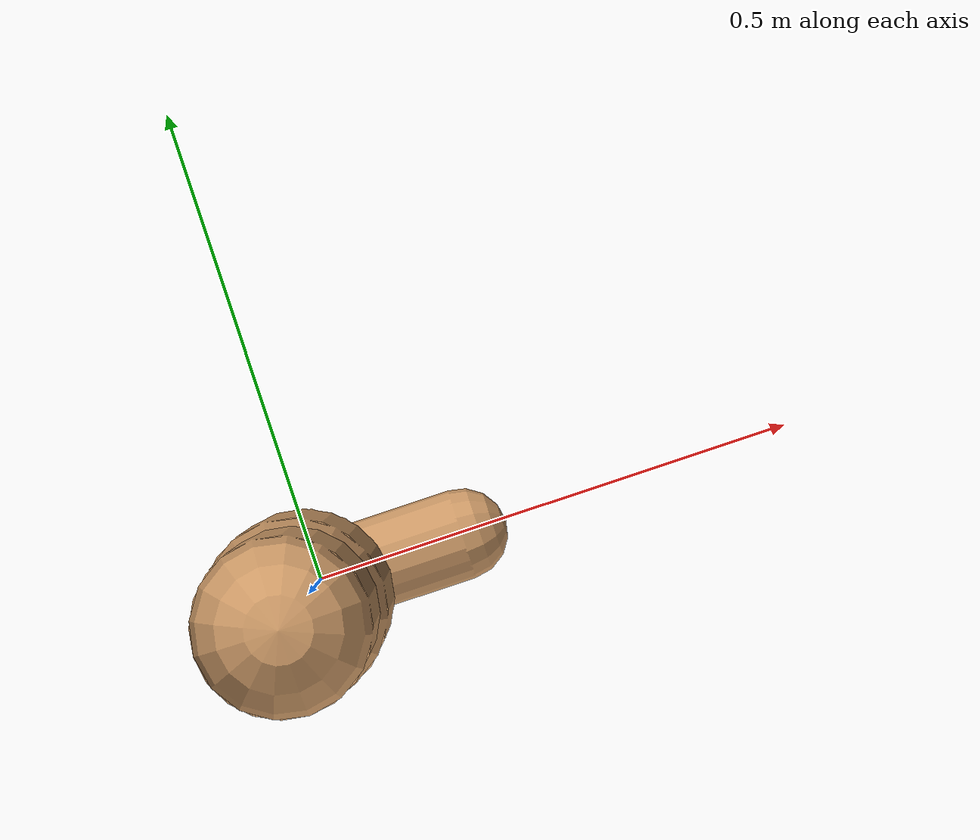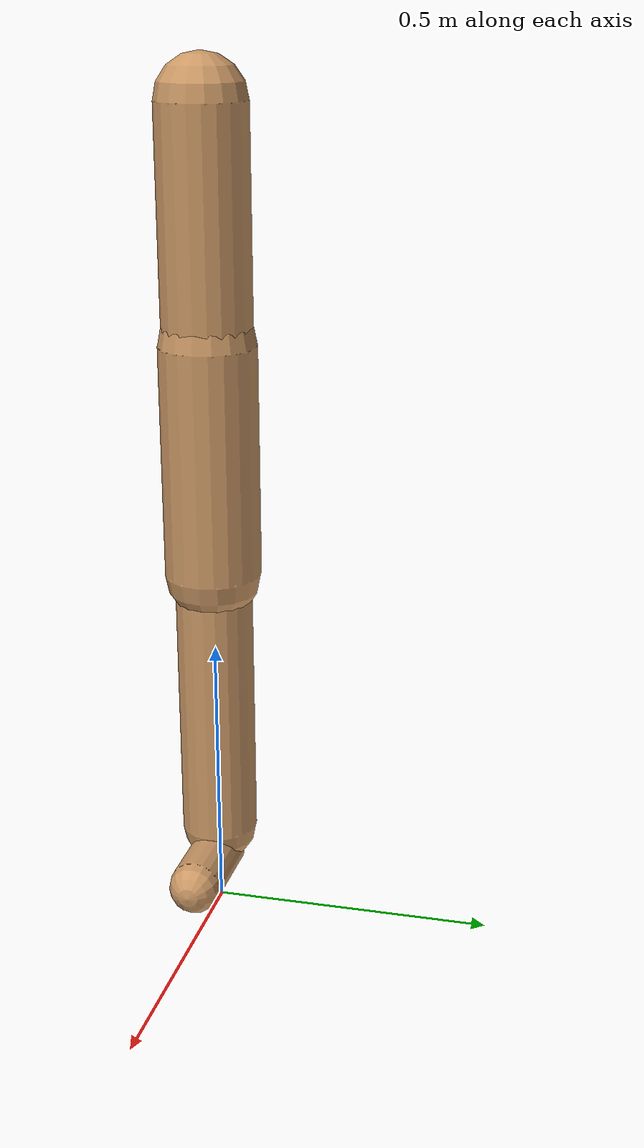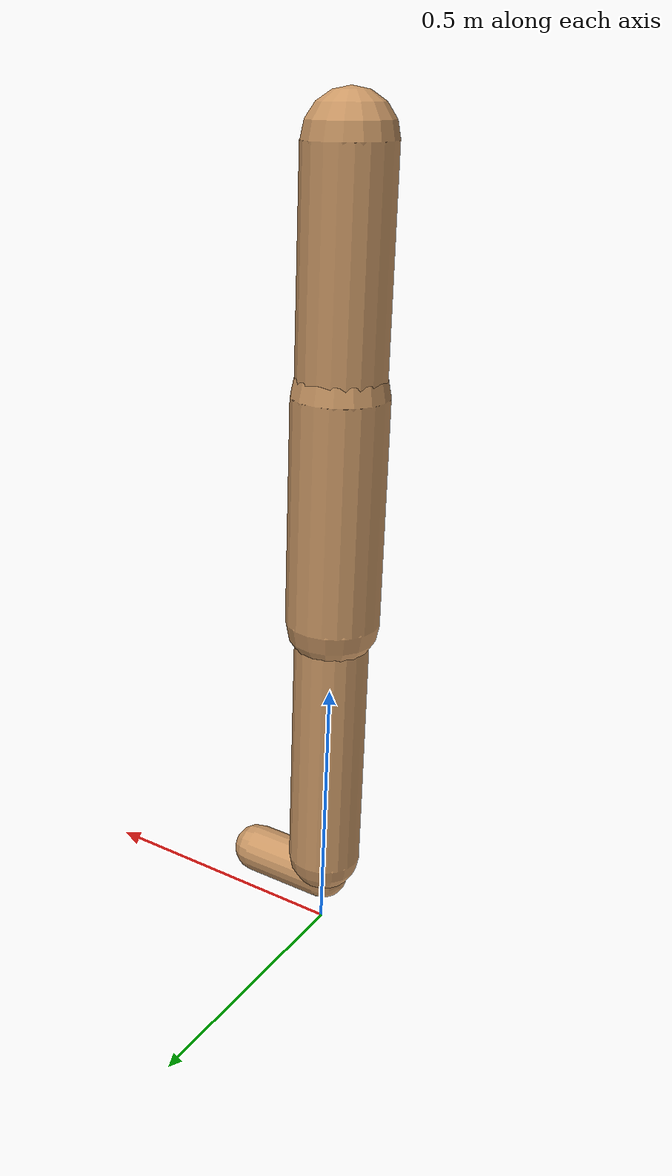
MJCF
<mujoco model="walker2d">
  <compiler angle="degree" coordinate="global" inertiafromgeom="true" />
  <default>
    <joint armature="0.01" damping=".1" limited="true" />
    <geom conaffinity="0" condim="3" contype="1" density="1000" friction="0.8 .1 .1" rgba="0.8 0.6 .4 1" />
  </default>
  <option integrator="RK4" timestep="0.002" />
  <worldbody>

    <body name="torso" pos="0 0 -0.08950450657355803">
      <joint armature="0" axis="1 0 0" damping="0" limited="false" name="ignorex" pos="0 0 0" stiffness="0" type="slide" />
      <joint armature="0" axis="0 0 1" damping="0" limited="false" name="ignorez" pos="0 0 0" ref="1.25" stiffness="0" type="slide" />
      <joint armature="0" axis="0 1 0" damping="0" limited="false" name="ignorey" pos="0 0 0" stiffness="0" type="hinge" />
      <geom fromto="0 0 1.45 0 0 1.05" name="torso_geom" size="0.07791068325247205" type="capsule" />
      <body name="thigh">
        <joint axis="0 -1 0" name="thigh_joint" pos="0 0 1.05" range="-150 0" type="hinge" />
        <geom fromto="0.0 0.0 1.05 0.0 0.0 0.6423968715348433" name="thigh_geom" size="0.0845314942886945" type="capsule" />
        <body name="leg" pos="0.0 0.0 0.04239687153484328">
          <joint axis="0 -1 0" name="leg_joint" pos="0 0 0.6" range="-150 0" type="hinge" />
          <geom fromto="0.0 0.0 0.6 0.0 0.0 0.14710763503871477" name="leg_geom" size="0.0676251954309556" type="capsule" />
          <body name="foot" pos="0.0 0.0 0.04710763503871476">
            <joint axis="0 -1 0" name="foot_joint" pos="0 0 0.1" range="-45 45" type="hinge" />
            <geom fromto="0.0 0.0 0.10000000000000002 0.1530804626737485 0.0 0.10000000000000002" name="foot_geom" size="0.04621403317905132" type="capsule" />
          </body>
        </body>
      </body>

      <body name="thigh_left">
        <joint axis="0 -1 0" name="thigh_left_joint" pos="0 0 1.05" range="-150 0" type="hinge" />
        <geom fromto="0.0 0.0 1.05 0.0 0.0 0.6423968715348433" name="thigh_left_geom" rgba=".7 .3 .6 1" size="0.0845314942886945" type="capsule" />
        <body name="leg_left" pos="0.0 0.0 0.04239687153484328">
          <joint axis="0 -1 0" name="leg_left_joint" pos="0 0 0.6" range="-150 0" type="hinge" />
          <geom fromto="0.0 0.0 0.6 0.0 0.0 0.14710763503871477" name="leg_left_geom" rgba=".7 .3 .6 1" size="0.0676251954309556" type="capsule" />
          <body name="foot_left" pos="0.0 0.0 0.04710763503871476">
            <joint axis="0 -1 0" name="foot_left_joint" pos="0 0 0.1" range="-45 45" type="hinge" />
            <geom fromto="0.0 0.0 0.10000000000000002 0.1530804626737485 0.0 0.10000000000000002" name="foot_left_geom" rgba=".7 .3 .6 1" size="0.04621403317905132" type="capsule" />
          </body>
        </body>
      </body>
    </body>
  </worldbody>
  <actuator>

    <motor ctrllimited="true" ctrlrange="-1.0 1.0" gear="100" joint="thigh_joint" />
    <motor ctrllimited="true" ctrlrange="-1.0 1.0" gear="100" joint="leg_joint" />
    <motor ctrllimited="true" ctrlrange="-1.0 1.0" gear="100" joint="foot_joint" />
    <motor ctrllimited="true" ctrlrange="-1.0 1.0" gear="100" joint="thigh_left_joint" />
    <motor ctrllimited="true" ctrlrange="-1.0 1.0" gear="100" joint="leg_left_joint" />
    <motor ctrllimited="true" ctrlrange="-1.0 1.0" gear="100" joint="foot_left_joint" />

  </actuator>
</mujoco>
